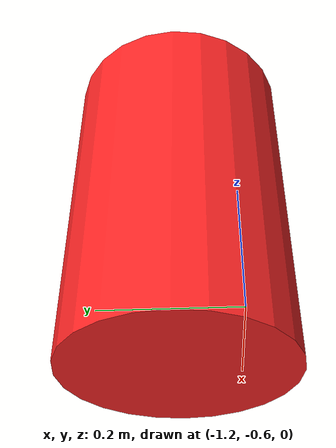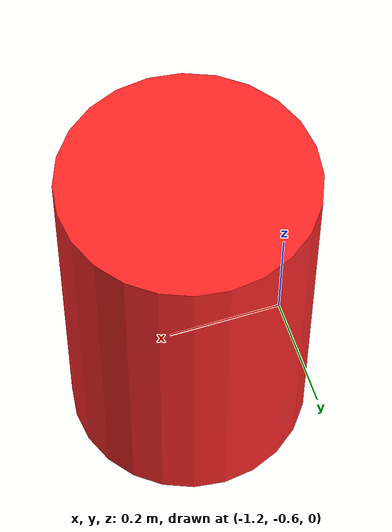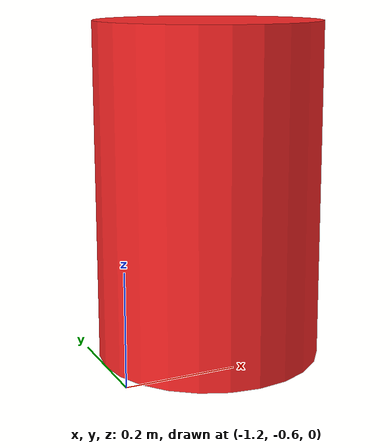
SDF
<?xml version="1.0" ?>
<sdf version="1.9">
  <model name="dynamic_obstacle">
    <!-- Pose is overridden at spawn time via the ros_gz_sim create node; this
         is only the fallback if spawned without an explicit pose. -->
    <pose>-1.0 -0.5 0.3 0 0 0</pose>
    <static>false</static>
    <self_collide>false</self_collide>

    <link name="link">
      <inertial>
        <mass>5.0</mass>
        <inertia>
          <ixx>0.15</ixx>
          <iyy>0.15</iyy>
          <izz>0.1</izz>
          <ixy>0</ixy>
          <ixz>0</ixz>
          <iyz>0</iyz>
        </inertia>
      </inertial>
      <collision name="collision">
        <geometry>
          <cylinder>
            <radius>0.2</radius>
            <length>0.6</length>
          </cylinder>
        </geometry>
      </collision>
      <visual name="visual">
        <geometry>
          <cylinder>
            <radius>0.2</radius>
            <length>0.6</length>
          </cylinder>
        </geometry>
        <material>
          <ambient>1.0 0.15 0.15 1</ambient>
          <diffuse>1.0 0.15 0.15 1</diffuse>
          <specular>0.2 0.2 0.2 1</specular>
        </material>
      </visual>
    </link>

    <!-- Directly drives the model's planar velocity via
         /model/dynamic_obstacle/cmd_vel (gz.msgs.Twist). This gives an
         exact, known ground-truth command for validating the tracker. -->
    <plugin filename="gz-sim-velocity-control-system" name="gz::sim::systems::VelocityControl">
    </plugin>

    <!-- Publishes ground-truth odometry for this model on
         /model/dynamic_obstacle/odometry (gz.msgs.Odometry), used only for
         quantitative tracker validation, never consumed by the tracker. -->
    <plugin filename="gz-sim-odometry-publisher-system" name="gz::sim::systems::OdometryPublisher">
      <odom_frame>world</odom_frame>
      <robot_base_frame>dynamic_obstacle</robot_base_frame>
      <odom_publish_frequency>20</odom_publish_frequency>
      <dimensions>2</dimensions>
    </plugin>
  </model>
</sdf>
